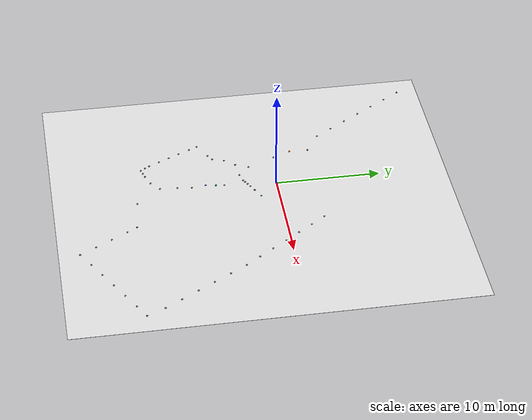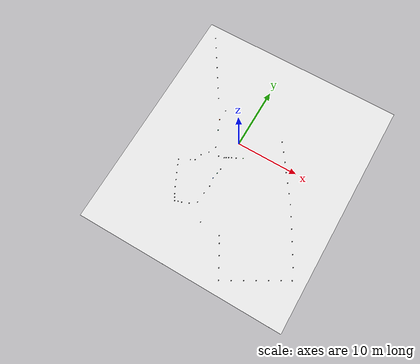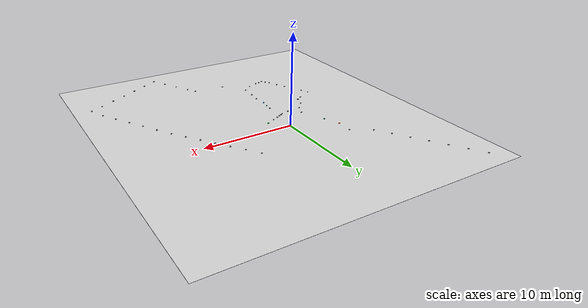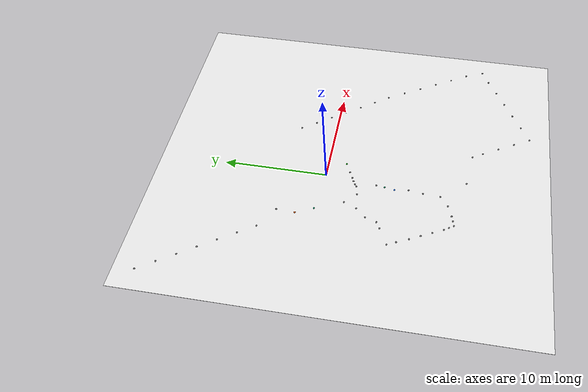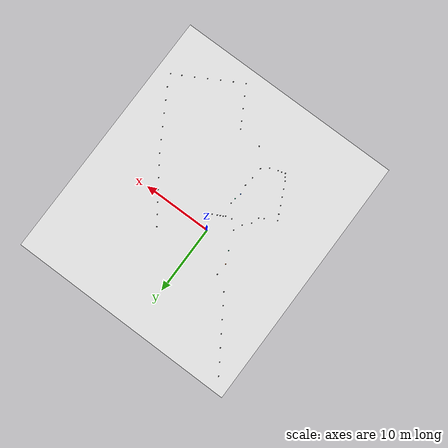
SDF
<sdf version="1.9">
 <world name="botvalley">
  <model name="ground_plane">
   <static>true</static>
   <pose>2.006956100463867 -2.43870210647583 0 0 0 0</pose>
   <link name="ground_link">
    <visual name="ground_visual">
     <geometry><box><size>33.73365783691406 37.907999992370605 0.01</size></box></geometry>
     <material><ambient>0.85 0.85 0.85 1.0</ambient><diffuse>0.85 0.85 0.85 1.0</diffuse></material>
    </visual>
    <collision name="ground_visual_collision">
     <geometry><box><size>33.73365783691406 37.907999992370605 0.01</size></box></geometry>
    </collision>
    <collision name="ground_collision">
     <geometry><plane><normal>0 0 1</normal><size>33.73365783691406 37.907999992370605</size></plane></geometry>
    </collision>
   </link>
  </model>
  <model name="node_markers">
   <static>true</static>
   <pose>0 0 0.01 0 0 0</pose>
   <link name="markers_link">
    <visual name="marker_c1">
     <pose>1.7146425247192383 -1.7317887544631958 0 0 0 0</pose>
     <geometry><sphere><radius>0.08</radius></sphere></geometry>
     <material><ambient>0.0 0.8 0.0 1.0</ambient><diffuse>0.0 0.8 0.0 1.0</diffuse></material>
    </visual>
    <visual name="marker_k1">
     <pose>-1.758684515953064 -3.2982900142669678 0 0 0 0</pose>
     <geometry><sphere><radius>0.08</radius></sphere></geometry>
     <material><ambient>0.5 0.5 0.5 1.0</ambient><diffuse>0.5 0.5 0.5 1.0</diffuse></material>
    </visual>
    <visual name="marker_k2">
     <pose>7.764575958251953 -19.392702102661133 0 0 0 0</pose>
     <geometry><sphere><radius>0.08</radius></sphere></geometry>
     <material><ambient>0.5 0.5 0.5 1.0</ambient><diffuse>0.5 0.5 0.5 1.0</diffuse></material>
    </visual>
    <visual name="marker_k3">
     <pose>16.8737850189209 -14.262846946716309 0 0 0 0</pose>
     <geometry><sphere><radius>0.08</radius></sphere></geometry>
     <material><ambient>0.5 0.5 0.5 1.0</ambient><diffuse>0.5 0.5 0.5 1.0</diffuse></material>
    </visual>
    <visual name="marker_k4">
     <pose>11.452939987182617 -4.5844197273254395 0 0 0 0</pose>
     <geometry><sphere><radius>0.08</radius></sphere></geometry>
     <material><ambient>0.5 0.5 0.5 1.0</ambient><diffuse>0.5 0.5 0.5 1.0</diffuse></material>
    </visual>
    <visual name="marker_k5">
     <pose>5.678647041320801 3.6116576194763184 0 0 0 0</pose>
     <geometry><sphere><radius>0.08</radius></sphere></geometry>
     <material><ambient>0.5 0.5 0.5 1.0</ambient><diffuse>0.5 0.5 0.5 1.0</diffuse></material>
    </visual>
    <visual name="marker_k7">
     <pose>-12.859872817993164 14.515297889709473 0 0 0 0</pose>
     <geometry><sphere><radius>0.08</radius></sphere></geometry>
     <material><ambient>0.5 0.5 0.5 1.0</ambient><diffuse>0.5 0.5 0.5 1.0</diffuse></material>
    </visual>
    <visual name="marker_k1_k2_1">
     <pose>-0.41727715730667114 -4.955166816711426 0 0 0 0</pose>
     <geometry><sphere><radius>0.08</radius></sphere></geometry>
     <material><ambient>0.5 0.5 0.5 1.0</ambient><diffuse>0.5 0.5 0.5 1.0</diffuse></material>
    </visual>
    <visual name="marker_k1_k2_2">
     <pose>-0.509238600730896 -5.767369747161865 0 0 0 0</pose>
     <geometry><sphere><radius>0.08</radius></sphere></geometry>
     <material><ambient>0.0 0.6 0.4 1.0</ambient><diffuse>0.0 0.6 0.4 1.0</diffuse></material>
    </visual>
    <visual name="marker_k1_k2_5">
     <pose>-0.6911510825157166 -6.722629547119141 0 0 0 0</pose>
     <geometry><sphere><radius>0.08</radius></sphere></geometry>
     <material><ambient>0.0 0.4 1.0 1.0</ambient><diffuse>0.0 0.4 1.0 1.0</diffuse></material>
    </visual>
    <visual name="marker_k1_k2_6">
     <pose>1.1738572120666504 -13.458955764770508 0 0 0 0</pose>
     <geometry><sphere><radius>0.08</radius></sphere></geometry>
     <material><ambient>0.5 0.5 0.5 1.0</ambient><diffuse>0.5 0.5 0.5 1.0</diffuse></material>
    </visual>
    <visual name="marker_k1_k2_7">
     <pose>4.595932960510254 -13.846612930297852 0 0 0 0</pose>
     <geometry><sphere><radius>0.08</radius></sphere></geometry>
     <material><ambient>0.5 0.5 0.5 1.0</ambient><diffuse>0.5 0.5 0.5 1.0</diffuse></material>
    </visual>
    <visual name="marker_k1_k2_8">
     <pose>5.18385124206543 -14.81391716003418 0 0 0 0</pose>
     <geometry><sphere><radius>0.08</radius></sphere></geometry>
     <material><ambient>0.5 0.5 0.5 1.0</ambient><diffuse>0.5 0.5 0.5 1.0</diffuse></material>
    </visual>
    <visual name="marker_k1_k2_9">
     <pose>6.044092655181885 -16.340179443359375 0 0 0 0</pose>
     <geometry><sphere><radius>0.08</radius></sphere></geometry>
     <material><ambient>0.5 0.5 0.5 1.0</ambient><diffuse>0.5 0.5 0.5 1.0</diffuse></material>
    </visual>
    <visual name="marker_k1_k2_10">
     <pose>6.904334545135498 -17.866439819335938 0 0 0 0</pose>
     <geometry><sphere><radius>0.08</radius></sphere></geometry>
     <material><ambient>0.5 0.5 0.5 1.0</ambient><diffuse>0.5 0.5 0.5 1.0</diffuse></material>
    </visual>
    <visual name="marker_k2_k3_1">
     <pose>9.314057350158691 -18.516298294067383 0 0 0 0</pose>
     <geometry><sphere><radius>0.08</radius></sphere></geometry>
     <material><ambient>0.5 0.5 0.5 1.0</ambient><diffuse>0.5 0.5 0.5 1.0</diffuse></material>
    </visual>
    <visual name="marker_k2_k3_2">
     <pose>10.86353874206543 -17.639894485473633 0 0 0 0</pose>
     <geometry><sphere><radius>0.08</radius></sphere></geometry>
     <material><ambient>0.5 0.5 0.5 1.0</ambient><diffuse>0.5 0.5 0.5 1.0</diffuse></material>
    </visual>
    <visual name="marker_k2_k3_3">
     <pose>12.413020133972168 -16.763490676879883 0 0 0 0</pose>
     <geometry><sphere><radius>0.08</radius></sphere></geometry>
     <material><ambient>0.5 0.5 0.5 1.0</ambient><diffuse>0.5 0.5 0.5 1.0</diffuse></material>
    </visual>
    <visual name="marker_k2_k3_4">
     <pose>13.962501525878906 -15.887086868286133 0 0 0 0</pose>
     <geometry><sphere><radius>0.08</radius></sphere></geometry>
     <material><ambient>0.5 0.5 0.5 1.0</ambient><diffuse>0.5 0.5 0.5 1.0</diffuse></material>
    </visual>
    <visual name="marker_k2_k3_5">
     <pose>15.511982917785645 -15.010683059692383 0 0 0 0</pose>
     <geometry><sphere><radius>0.08</radius></sphere></geometry>
     <material><ambient>0.5 0.5 0.5 1.0</ambient><diffuse>0.5 0.5 0.5 1.0</diffuse></material>
    </visual>
    <visual name="marker_k3_k4_1">
     <pose>16.126710891723633 -12.542635917663574 0 0 0 0</pose>
     <geometry><sphere><radius>0.08</radius></sphere></geometry>
     <material><ambient>0.5 0.5 0.5 1.0</ambient><diffuse>0.5 0.5 0.5 1.0</diffuse></material>
    </visual>
    <visual name="marker_k3_k4_2">
     <pose>15.191956520080566 -10.950992584228516 0 0 0 0</pose>
     <geometry><sphere><radius>0.08</radius></sphere></geometry>
     <material><ambient>0.5 0.5 0.5 1.0</ambient><diffuse>0.5 0.5 0.5 1.0</diffuse></material>
    </visual>
    <visual name="marker_k3_k4_3">
     <pose>14.2572021484375 -9.359349250793457 0 0 0 0</pose>
     <geometry><sphere><radius>0.08</radius></sphere></geometry>
     <material><ambient>0.5 0.5 0.5 1.0</ambient><diffuse>0.5 0.5 0.5 1.0</diffuse></material>
    </visual>
    <visual name="marker_k3_k4_4">
     <pose>13.32244873046875 -7.767706394195557 0 0 0 0</pose>
     <geometry><sphere><radius>0.08</radius></sphere></geometry>
     <material><ambient>0.5 0.5 0.5 1.0</ambient><diffuse>0.5 0.5 0.5 1.0</diffuse></material>
    </visual>
    <visual name="marker_k3_k4_5">
     <pose>12.387694358825684 -6.176063060760498 0 0 0 0</pose>
     <geometry><sphere><radius>0.08</radius></sphere></geometry>
     <material><ambient>0.5 0.5 0.5 1.0</ambient><diffuse>0.5 0.5 0.5 1.0</diffuse></material>
    </visual>
    <visual name="marker_k4_k5_1">
     <pose>10.490557670593262 -3.218406915664673 0 0 0 0</pose>
     <geometry><sphere><radius>0.08</radius></sphere></geometry>
     <material><ambient>0.5 0.5 0.5 1.0</ambient><diffuse>0.5 0.5 0.5 1.0</diffuse></material>
    </visual>
    <visual name="marker_k4_k5_2">
     <pose>9.528176307678223 -1.8523941040039062 0 0 0 0</pose>
     <geometry><sphere><radius>0.08</radius></sphere></geometry>
     <material><ambient>0.5 0.5 0.5 1.0</ambient><diffuse>0.5 0.5 0.5 1.0</diffuse></material>
    </visual>
    <visual name="marker_k4_k5_3">
     <pose>8.565793991088867 -0.4863811731338501 0 0 0 0</pose>
     <geometry><sphere><radius>0.08</radius></sphere></geometry>
     <material><ambient>0.5 0.5 0.5 1.0</ambient><diffuse>0.5 0.5 0.5 1.0</diffuse></material>
    </visual>
    <visual name="marker_k4_k5_4">
     <pose>7.603411674499512 0.879631757736206 0 0 0 0</pose>
     <geometry><sphere><radius>0.08</radius></sphere></geometry>
     <material><ambient>0.5 0.5 0.5 1.0</ambient><diffuse>0.5 0.5 0.5 1.0</diffuse></material>
    </visual>
    <visual name="marker_k4_k5_5">
     <pose>6.641029357910156 2.2456445693969727 0 0 0 0</pose>
     <geometry><sphere><radius>0.08</radius></sphere></geometry>
     <material><ambient>0.5 0.5 0.5 1.0</ambient><diffuse>0.5 0.5 0.5 1.0</diffuse></material>
    </visual>
    <visual name="marker_k7_k1_1">
     <pose>-11.845165252685547 12.959014892578125 0 0 0 0</pose>
     <geometry><sphere><radius>0.08</radius></sphere></geometry>
     <material><ambient>0.5 0.5 0.5 1.0</ambient><diffuse>0.5 0.5 0.5 1.0</diffuse></material>
    </visual>
    <visual name="marker_k7_k1_2">
     <pose>-10.830456733703613 11.402730941772461 0 0 0 0</pose>
     <geometry><sphere><radius>0.08</radius></sphere></geometry>
     <material><ambient>0.5 0.5 0.5 1.0</ambient><diffuse>0.5 0.5 0.5 1.0</diffuse></material>
    </visual>
    <visual name="marker_k7_k1_3">
     <pose>-9.81574821472168 9.846446990966797 0 0 0 0</pose>
     <geometry><sphere><radius>0.08</radius></sphere></geometry>
     <material><ambient>0.5 0.5 0.5 1.0</ambient><diffuse>0.5 0.5 0.5 1.0</diffuse></material>
    </visual>
    <visual name="marker_k7_k1_4">
     <pose>-8.801039695739746 8.290163040161133 0 0 0 0</pose>
     <geometry><sphere><radius>0.08</radius></sphere></geometry>
     <material><ambient>0.5 0.5 0.5 1.0</ambient><diffuse>0.5 0.5 0.5 1.0</diffuse></material>
    </visual>
    <visual name="marker_k7_k1_5">
     <pose>-7.786331653594971 6.733879089355469 0 0 0 0</pose>
     <geometry><sphere><radius>0.08</radius></sphere></geometry>
     <material><ambient>0.5 0.5 0.5 1.0</ambient><diffuse>0.5 0.5 0.5 1.0</diffuse></material>
    </visual>
    <visual name="marker_k7_k1_6">
     <pose>-6.771623134613037 5.177595615386963 0 0 0 0</pose>
     <geometry><sphere><radius>0.08</radius></sphere></geometry>
     <material><ambient>0.5 0.5 0.5 1.0</ambient><diffuse>0.5 0.5 0.5 1.0</diffuse></material>
    </visual>
    <visual name="marker_k7_k1_7">
     <pose>-4.678679943084717 3.8304426670074463 0 0 0 0</pose>
     <geometry><sphere><radius>0.08</radius></sphere></geometry>
     <material><ambient>0.5 0.5 0.5 1.0</ambient><diffuse>0.5 0.5 0.5 1.0</diffuse></material>
    </visual>
    <visual name="marker_k7_k1_8">
     <pose>-4.742206573486328 2.065027952194214 0 0 0 0</pose>
     <geometry><sphere><radius>0.08</radius></sphere></geometry>
     <material><ambient>1.0 0.4 0.0 1.0</ambient><diffuse>1.0 0.4 0.0 1.0</diffuse></material>
    </visual>
    <visual name="marker_k7_k1_9">
     <pose>-4 0.4 0 0 0 0</pose>
     <geometry><sphere><radius>0.08</radius></sphere></geometry>
     <material><ambient>0.0 0.6 0.4 1.0</ambient><diffuse>0.0 0.6 0.4 1.0</diffuse></material>
    </visual>
    <visual name="marker_k7_k1_10">
     <pose>-2.8607993125915527 -2.2503156661987305 0 0 0 0</pose>
     <geometry><sphere><radius>0.08</radius></sphere></geometry>
     <material><ambient>0.5 0.5 0.5 1.0</ambient><diffuse>0.5 0.5 0.5 1.0</diffuse></material>
    </visual>
    <visual name="marker_c1_k1_1">
     <pose>0.7685220241546631 -2.213562250137329 0 0 0 0</pose>
     <geometry><sphere><radius>0.08</radius></sphere></geometry>
     <material><ambient>0.5 0.5 0.5 1.0</ambient><diffuse>0.5 0.5 0.5 1.0</diffuse></material>
    </visual>
    <visual name="marker_c1_k1_2">
     <pose>0.10828320682048798 -2.5398871898651123 0 0 0 0</pose>
     <geometry><sphere><radius>0.08</radius></sphere></geometry>
     <material><ambient>0.5 0.5 0.5 1.0</ambient><diffuse>0.5 0.5 0.5 1.0</diffuse></material>
    </visual>
    <visual name="marker_c1_k1_3">
     <pose>-0.2635754346847534 -2.7296109199523926 0 0 0 0</pose>
     <geometry><sphere><radius>0.08</radius></sphere></geometry>
     <material><ambient>0.5 0.5 0.5 1.0</ambient><diffuse>0.5 0.5 0.5 1.0</diffuse></material>
    </visual>
    <visual name="marker_c1_k1_4">
     <pose>-0.6126672625541687 -2.919334888458252 0 0 0 0</pose>
     <geometry><sphere><radius>0.08</radius></sphere></geometry>
     <material><ambient>0.5 0.5 0.5 1.0</ambient><diffuse>0.5 0.5 0.5 1.0</diffuse></material>
    </visual>
    <visual name="marker_c1_k1_5">
     <pose>-0.8555136919021606 -3.078702688217163 0 0 0 0</pose>
     <geometry><sphere><radius>0.08</radius></sphere></geometry>
     <material><ambient>0.5 0.5 0.5 1.0</ambient><diffuse>0.5 0.5 0.5 1.0</diffuse></material>
    </visual>
    <visual name="marker_o1_new_w2_2">
     <pose>-5.233762264251709 -5.931482791900635 0 0 0 0</pose>
     <geometry><sphere><radius>0.08</radius></sphere></geometry>
     <material><ambient>0.5 0.5 0.5 1.0</ambient><diffuse>0.5 0.5 0.5 1.0</diffuse></material>
    </visual>
    <visual name="marker_o1_new_w2_3">
     <pose>-4.609227180480957 -5.558860778808594 0 0 0 0</pose>
     <geometry><sphere><radius>0.08</radius></sphere></geometry>
     <material><ambient>0.5 0.5 0.5 1.0</ambient><diffuse>0.5 0.5 0.5 1.0</diffuse></material>
    </visual>
    <visual name="marker_o1_new_w2_4">
     <pose>-4.24013090133667 -4.4496893882751465 0 0 0 0</pose>
     <geometry><sphere><radius>0.08</radius></sphere></geometry>
     <material><ambient>0.5 0.5 0.5 1.0</ambient><diffuse>0.5 0.5 0.5 1.0</diffuse></material>
    </visual>
    <visual name="marker_o1_new_w2_5">
     <pose>-3.3851330280303955 -3.482191562652588 0 0 0 0</pose>
     <geometry><sphere><radius>0.08</radius></sphere></geometry>
     <material><ambient>0.5 0.5 0.5 1.0</ambient><diffuse>0.5 0.5 0.5 1.0</diffuse></material>
    </visual>
    <visual name="marker_o1_new_o2_new_2">
     <pose>-5.946850776672363 -8.71485710144043 0 0 0 0</pose>
     <geometry><sphere><radius>0.08</radius></sphere></geometry>
     <material><ambient>0.5 0.5 0.5 1.0</ambient><diffuse>0.5 0.5 0.5 1.0</diffuse></material>
    </visual>
    <visual name="marker_o1_new_o2_new_3">
     <pose>-5.448122978210449 -9.719094276428223 0 0 0 0</pose>
     <geometry><sphere><radius>0.08</radius></sphere></geometry>
     <material><ambient>0.5 0.5 0.5 1.0</ambient><diffuse>0.5 0.5 0.5 1.0</diffuse></material>
    </visual>
    <visual name="marker_o1_new_o2_new_4">
     <pose>-4.949395179748535 -10.7233304977417 0 0 0 0</pose>
     <geometry><sphere><radius>0.08</radius></sphere></geometry>
     <material><ambient>0.5 0.5 0.5 1.0</ambient><diffuse>0.5 0.5 0.5 1.0</diffuse></material>
    </visual>
    <visual name="marker_o1_new_o2_new_5">
     <pose>-4.450667381286621 -11.727567672729492 0 0 0 0</pose>
     <geometry><sphere><radius>0.08</radius></sphere></geometry>
     <material><ambient>0.5 0.5 0.5 1.0</ambient><diffuse>0.5 0.5 0.5 1.0</diffuse></material>
    </visual>
    <visual name="marker_o2_new_k1_k2_5_1">
     <pose>-2.859428882598877 -12.315691947937012 0 0 0 0</pose>
     <geometry><sphere><radius>0.08</radius></sphere></geometry>
     <material><ambient>0.5 0.5 0.5 1.0</ambient><diffuse>0.5 0.5 0.5 1.0</diffuse></material>
    </visual>
    <visual name="marker_o2_new_k1_k2_5_2">
     <pose>-1.7669177055358887 -11.899580001831055 0 0 0 0</pose>
     <geometry><sphere><radius>0.08</radius></sphere></geometry>
     <material><ambient>0.5 0.5 0.5 1.0</ambient><diffuse>0.5 0.5 0.5 1.0</diffuse></material>
    </visual>
    <visual name="marker_o2_new_k1_k2_5_3">
     <pose>-0.787115752696991 -11.096843719482422 0 0 0 0</pose>
     <geometry><sphere><radius>0.08</radius></sphere></geometry>
     <material><ambient>0.5 0.5 0.5 1.0</ambient><diffuse>0.5 0.5 0.5 1.0</diffuse></material>
    </visual>
    <visual name="marker_o2_new_k1_k2_5_4">
     <pose>-0.6764636635780334 -9.44577407836914 0 0 0 0</pose>
     <geometry><sphere><radius>0.08</radius></sphere></geometry>
     <material><ambient>0.5 0.5 0.5 1.0</ambient><diffuse>0.5 0.5 0.5 1.0</diffuse></material>
    </visual>
    <visual name="marker_o2_new_k1_k2_5_5">
     <pose>-0.49914029240608215 -8.072136878967285 0 0 0 0</pose>
     <geometry><sphere><radius>0.08</radius></sphere></geometry>
     <material><ambient>0.5 0.5 0.5 1.0</ambient><diffuse>0.5 0.5 0.5 1.0</diffuse></material>
    </visual>
    <visual name="marker_o1_new">
     <pose>-6.8502068519592285 -6.797435283660889 0 0 0 0</pose>
     <geometry><sphere><radius>0.08</radius></sphere></geometry>
     <material><ambient>0.5 0.5 0.5 1.0</ambient><diffuse>0.5 0.5 0.5 1.0</diffuse></material>
    </visual>
    <visual name="marker_o2_new">
     <pose>-3.87721586227417 -12.606410026550293 0 0 0 0</pose>
     <geometry><sphere><radius>0.08</radius></sphere></geometry>
     <material><ambient>0.5 0.5 0.5 1.0</ambient><diffuse>0.5 0.5 0.5 1.0</diffuse></material>
    </visual>
    <visual name="marker_o2_new_o1_new_o2_new_5_1">
     <pose>-4.163941860198975 -12.16698932647705 0 0 0 0</pose>
     <geometry><sphere><radius>0.08</radius></sphere></geometry>
     <material><ambient>0.5 0.5 0.5 1.0</ambient><diffuse>0.5 0.5 0.5 1.0</diffuse></material>
    </visual>
    <visual name="marker_o2_new_o2_new_k1_k2_5_1_1">
     <pose>-3.3683223724365234 -12.461050987243652 0 0 0 0</pose>
     <geometry><sphere><radius>0.08</radius></sphere></geometry>
     <material><ambient>0.5 0.5 0.5 1.0</ambient><diffuse>0.5 0.5 0.5 1.0</diffuse></material>
    </visual>
    <visual name="marker_o1_new_o1_new_o2_new_2_1">
     <pose>-6.459879398345947 -7.608238220214844 0 0 0 0</pose>
     <geometry><sphere><radius>0.08</radius></sphere></geometry>
     <material><ambient>0.5 0.5 0.5 1.0</ambient><diffuse>0.5 0.5 0.5 1.0</diffuse></material>
    </visual>
   </link>
  </model>
 </world>
</sdf>
